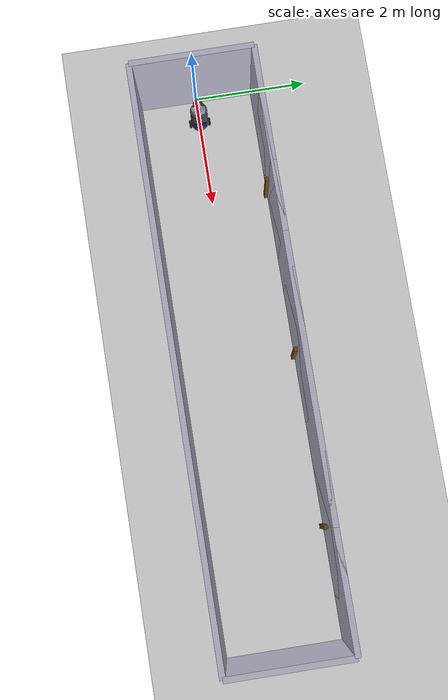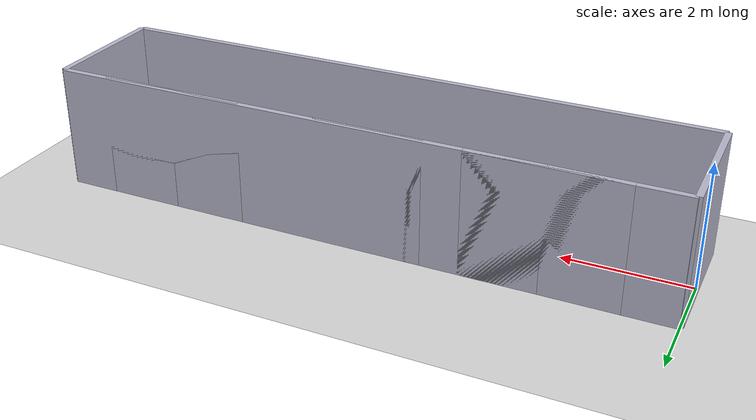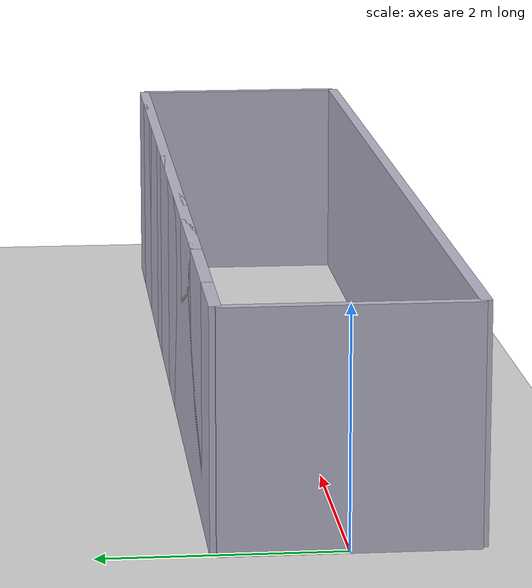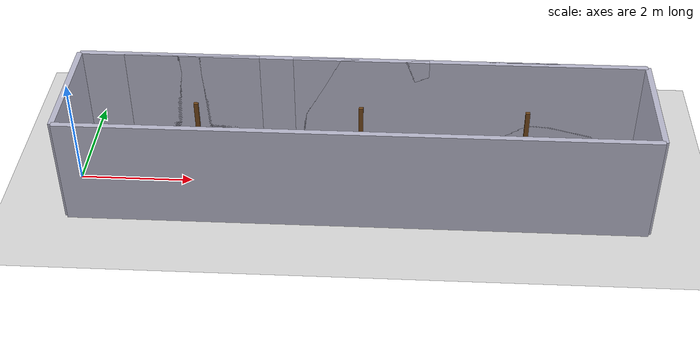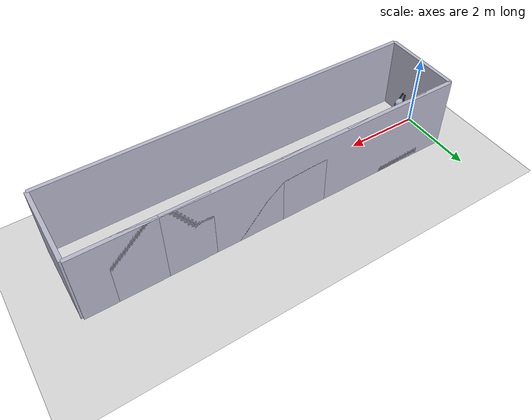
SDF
<?xml version="1.0"?>
<!--
  Gazebo Harmonic (gz-sim 8.x) world for Chapter 2 demo.
  Contains: hallway 10m × 2m with 3 doors + Pluto robot (SDF model inline).
-->
<sdf version="1.9">
  <world name="pluto_hallway">

    <!-- ==================== Plugins ==================== -->
    <plugin filename="gz-sim-physics-system"      name="gz::sim::systems::Physics"/>
    <plugin filename="gz-sim-user-commands-system" name="gz::sim::systems::UserCommands"/>
    <plugin filename="gz-sim-scene-broadcaster-system" name="gz::sim::systems::SceneBroadcaster"/>
    <plugin filename="gz-sim-sensors-system"       name="gz::sim::systems::Sensors">
      <render_engine>ogre2</render_engine>
    </plugin>
    <plugin filename="gz-sim-contact-system"       name="gz::sim::systems::Contact"/>

    <!-- ==================== Environment ==================== -->
    <gravity>0 0 -9.81</gravity>

    <light type="directional" name="sun">
      <cast_shadows>true</cast_shadows>
      <pose>0 0 10 0 0 0</pose>
      <diffuse>0.9 0.9 0.9 1</diffuse>
      <specular>0.3 0.3 0.3 1</specular>
      <direction>-0.4 0.1 -0.9</direction>
    </light>

    <!-- Ground -->
    <model name="ground_plane">
      <static>true</static>
      <link name="link">
        <collision name="collision">
          <geometry><plane><normal>0 0 1</normal><size>25 10</size></plane></geometry>
          <surface><friction><ode><mu>1</mu><mu2>1</mu2></ode></friction></surface>
        </collision>
        <visual name="visual">
          <geometry><plane><normal>0 0 1</normal><size>25 10</size></plane></geometry>
          <material>
            <ambient>0.85 0.85 0.85 1</ambient>
            <diffuse>0.85 0.85 0.85 1</diffuse>
          </material>
        </visual>
      </link>
    </model>

    <!-- ==================== Hallway walls ==================== -->
    <!-- Left wall (y = +1.0) -->
    <model name="left_wall">
      <static>true</static>
      <pose>5 1.05 1.0 0 0 0</pose>
      <link name="link">
        <collision name="c"><geometry><box><size>10 0.1 2.0</size></box></geometry></collision>
        <visual name="v">
          <geometry><box><size>10 0.1 2.0</size></box></geometry>
          <material><ambient>0.72 0.72 0.8 1</ambient><diffuse>0.72 0.72 0.8 1</diffuse></material>
        </visual>
      </link>
    </model>

    <!-- Right wall (y = -1.0) -->
    <model name="right_wall">
      <static>true</static>
      <pose>5 -1.05 1.0 0 0 0</pose>
      <link name="link">
        <collision name="c"><geometry><box><size>10 0.1 2.0</size></box></geometry></collision>
        <visual name="v">
          <geometry><box><size>10 0.1 2.0</size></box></geometry>
          <material><ambient>0.72 0.72 0.8 1</ambient><diffuse>0.72 0.72 0.8 1</diffuse></material>
        </visual>
      </link>
    </model>

    <!-- Start cap -->
    <model name="start_wall">
      <static>true</static>
      <pose>0 0 1.0 0 0 0</pose>
      <link name="link">
        <collision name="c"><geometry><box><size>0.1 2.1 2.0</size></box></geometry></collision>
        <visual name="v">
          <geometry><box><size>0.1 2.1 2.0</size></box></geometry>
          <material><ambient>0.72 0.72 0.8 1</ambient></material>
        </visual>
      </link>
    </model>

    <!-- End cap -->
    <model name="end_wall">
      <static>true</static>
      <pose>10 0 1.0 0 0 0</pose>
      <link name="link">
        <collision name="c"><geometry><box><size>0.1 2.1 2.0</size></box></geometry></collision>
        <visual name="v">
          <geometry><box><size>0.1 2.1 2.0</size></box></geometry>
          <material><ambient>0.72 0.72 0.8 1</ambient></material>
        </visual>
      </link>
    </model>

    <!-- Door markers (openings in left wall at x=2, 5, 8) — brown frames -->
    <model name="door_1_left">  <static>true</static>  <pose>1.4 1.05 1.0 0 0 0</pose>
      <link name="l"><collision name="c"><geometry><box><size>1.2 0.1 2.0</size></box></geometry></collision>
        <visual name="v"><geometry><box><size>1.2 0.1 2.0</size></box></geometry><material><ambient>0.72 0.72 0.8 1</ambient></material></visual></link></model>
    <model name="door_1_right"> <static>true</static>  <pose>2.6 1.05 1.0 0 0 0</pose>
      <link name="l"><collision name="c"><geometry><box><size>1.2 0.1 2.0</size></box></geometry></collision>
        <visual name="v"><geometry><box><size>1.2 0.1 2.0</size></box></geometry><material><ambient>0.72 0.72 0.8 1</ambient></material></visual></link></model>

    <model name="door_2_left">  <static>true</static>  <pose>4.4 1.05 1.0 0 0 0</pose>
      <link name="l"><collision name="c"><geometry><box><size>1.2 0.1 2.0</size></box></geometry></collision>
        <visual name="v"><geometry><box><size>1.2 0.1 2.0</size></box></geometry><material><ambient>0.72 0.72 0.8 1</ambient></material></visual></link></model>
    <model name="door_2_right"> <static>true</static>  <pose>5.6 1.05 1.0 0 0 0</pose>
      <link name="l"><collision name="c"><geometry><box><size>1.2 0.1 2.0</size></box></geometry></collision>
        <visual name="v"><geometry><box><size>1.2 0.1 2.0</size></box></geometry><material><ambient>0.72 0.72 0.8 1</ambient></material></visual></link></model>

    <model name="door_3_left">  <static>true</static>  <pose>7.4 1.05 1.0 0 0 0</pose>
      <link name="l"><collision name="c"><geometry><box><size>1.2 0.1 2.0</size></box></geometry></collision>
        <visual name="v"><geometry><box><size>1.2 0.1 2.0</size></box></geometry><material><ambient>0.72 0.72 0.8 1</ambient></material></visual></link></model>
    <model name="door_3_right"> <static>true</static>  <pose>8.6 1.05 1.0 0 0 0</pose>
      <link name="l"><collision name="c"><geometry><box><size>1.2 0.1 2.0</size></box></geometry></collision>
        <visual name="v"><geometry><box><size>1.2 0.1 2.0</size></box></geometry><material><ambient>0.72 0.72 0.8 1</ambient></material></visual></link></model>

    <!-- Door frames (brown visual markers) -->
    <model name="frame_1"><static>true</static><pose>2.0 1.0 0.5 0 0 0</pose>
      <link name="l"><visual name="v"><geometry><box><size>0.08 0.12 1.0</size></box></geometry>
        <material><ambient>0.45 0.28 0.1 1</ambient><diffuse>0.45 0.28 0.1 1</diffuse></material></visual></link></model>
    <model name="frame_2"><static>true</static><pose>5.0 1.0 0.5 0 0 0</pose>
      <link name="l"><visual name="v"><geometry><box><size>0.08 0.12 1.0</size></box></geometry>
        <material><ambient>0.45 0.28 0.1 1</ambient><diffuse>0.45 0.28 0.1 1</diffuse></material></visual></link></model>
    <model name="frame_3"><static>true</static><pose>8.0 1.0 0.5 0 0 0</pose>
      <link name="l"><visual name="v"><geometry><box><size>0.08 0.12 1.0</size></box></geometry>
        <material><ambient>0.45 0.28 0.1 1</ambient><diffuse>0.45 0.28 0.1 1</diffuse></material></visual></link></model>

    <!-- ==================== Pluto Robot (SDF native) ==================== -->
    <model name="pluto">
      <pose>0.5 0 0.07 0 0 0</pose>

      <!-- Base link -->
      <link name="base_footprint">
        <inertial><mass>0.001</mass><inertia><ixx>0.0000001</ixx><iyy>0.0000001</iyy><izz>0.0000001</izz></inertia></inertial>
      </link>

      <link name="base_link">
        <pose>0 0 0.07 0 0 0</pose>
        <inertial><mass>10.0</mass>
          <inertia><ixx>0.35</ixx><iyy>0.35</iyy><izz>0.12</izz><ixy>0</ixy><ixz>0</ixz><iyz>0</iyz></inertia>
        </inertial>
        <!-- Main cylinder body -->
        <visual name="body">
          <pose>0 0 0.30 0 0 0</pose>
          <geometry><cylinder><radius>0.15</radius><length>0.60</length></cylinder></geometry>
          <material><ambient>0.28 0.30 0.33 1</ambient><diffuse>0.28 0.30 0.33 1</diffuse></material>
        </visual>
        <collision name="body_col">
          <pose>0 0 0.30 0 0 0</pose>
          <geometry><cylinder><radius>0.15</radius><length>0.60</length></cylinder></geometry>
        </collision>
        <!-- Head sphere -->
        <visual name="head">
          <pose>0 0 0.665 0 0 0</pose>
          <geometry><sphere><radius>0.13</radius></sphere></geometry>
          <material><ambient>0.70 0.73 0.78 1</ambient><diffuse>0.70 0.73 0.78 1</diffuse></material>
        </visual>
        <!-- Left horn -->
        <visual name="horn_l">
          <pose>-0.05 0.06 0.82 0 -0.35 0.52</pose>
          <geometry><cylinder><radius>0.022</radius><length>0.25</length></cylinder></geometry>
          <material><ambient>0.2 0.22 0.25 1</ambient></material>
        </visual>
        <!-- Right horn -->
        <visual name="horn_r">
          <pose>-0.05 -0.06 0.82 0 -0.35 -0.52</pose>
          <geometry><cylinder><radius>0.022</radius><length>0.25</length></cylinder></geometry>
          <material><ambient>0.2 0.22 0.25 1</ambient></material>
        </visual>
        <!-- Left eye (blue) -->
        <visual name="eye_l">
          <pose>0.10 0.05 0.67 0 0 0</pose>
          <geometry><sphere><radius>0.024</radius></sphere></geometry>
          <material><ambient>0.0 0.5 1.0 1</ambient><diffuse>0.0 0.5 1.0 1</diffuse><emissive>0.0 0.3 0.8 1</emissive></material>
        </visual>
        <!-- Right eye (blue) -->
        <visual name="eye_r">
          <pose>0.10 -0.05 0.67 0 0 0</pose>
          <geometry><sphere><radius>0.024</radius></sphere></geometry>
          <material><ambient>0.0 0.5 1.0 1</ambient><diffuse>0.0 0.5 1.0 1</diffuse><emissive>0.0 0.3 0.8 1</emissive></material>
        </visual>
        <!-- Chest panel (dark blue) -->
        <visual name="chest">
          <pose>0.155 0 0.30 0 0 0</pose>
          <geometry><box><size>0.01 0.22 0.18</size></box></geometry>
          <material><ambient>0.05 0.15 0.40 1</ambient><diffuse>0.05 0.15 0.40 1</diffuse><emissive>0.0 0.05 0.15 1</emissive></material>
        </visual>

        <!-- LiDAR sensor on left horn tip -->
        <sensor name="lidar" type="gpu_lidar">
          <pose>-0.05 0.06 0.95 0 0 0</pose>
          <topic>scan</topic>
          <update_rate>10</update_rate>
          <visualize>false</visualize>
          <lidar>
            <scan>
              <horizontal>
                <samples>360</samples>
                <resolution>1</resolution>
                <min_angle>-3.14159</min_angle>
                <max_angle>3.14159</max_angle>
              </horizontal>
            </scan>
            <range>
              <min>0.12</min>
              <max>12.0</max>
              <resolution>0.01</resolution>
            </range>
            <noise><type>gaussian</type><mean>0</mean><stddev>0.01</stddev></noise>
          </lidar>
        </sensor>

        <!-- IMU -->
        <sensor name="imu_sensor" type="imu">
          <always_on>true</always_on>
          <update_rate>100</update_rate>
          <topic>imu</topic>
        </sensor>
      </link>

      <!-- Left wheel -->
      <link name="left_wheel">
        <pose>0 0.17 0.07 1.5707963 0 0</pose>
        <inertial><mass>0.8</mass>
          <inertia><ixx>0.002</ixx><iyy>0.002</iyy><izz>0.004</izz></inertia>
        </inertial>
        <visual name="v">
          <geometry><cylinder><radius>0.07</radius><length>0.04</length></cylinder></geometry>
          <material><ambient>0.12 0.12 0.12 1</ambient><diffuse>0.12 0.12 0.12 1</diffuse></material>
        </visual>
        <collision name="c">
          <geometry><cylinder><radius>0.07</radius><length>0.04</length></cylinder></geometry>
          <surface><friction><ode><mu>1.0</mu><mu2>1.0</mu2></ode></friction></surface>
        </collision>
      </link>

      <!-- Right wheel -->
      <link name="right_wheel">
        <pose>0 -0.17 0.07 1.5707963 0 0</pose>
        <inertial><mass>0.8</mass>
          <inertia><ixx>0.002</ixx><iyy>0.002</iyy><izz>0.004</izz></inertia>
        </inertial>
        <visual name="v">
          <geometry><cylinder><radius>0.07</radius><length>0.04</length></cylinder></geometry>
          <material><ambient>0.12 0.12 0.12 1</ambient><diffuse>0.12 0.12 0.12 1</diffuse></material>
        </visual>
        <collision name="c">
          <geometry><cylinder><radius>0.07</radius><length>0.04</length></cylinder></geometry>
          <surface><friction><ode><mu>1.0</mu><mu2>1.0</mu2></ode></friction></surface>
        </collision>
      </link>

      <!-- Caster -->
      <link name="caster">
        <pose>-0.11 0 0.035 0 0 0</pose>
        <inertial><mass>0.2</mass>
          <inertia><ixx>0.0003</ixx><iyy>0.0003</iyy><izz>0.0003</izz></inertia>
        </inertial>
        <visual name="v">
          <geometry><sphere><radius>0.035</radius></sphere></geometry>
          <material><ambient>0.12 0.12 0.12 1</ambient></material>
        </visual>
        <collision name="c">
          <geometry><sphere><radius>0.035</radius></sphere></geometry>
          <surface><friction><ode><mu>0.0</mu><mu2>0.0</mu2></ode></friction></surface>
        </collision>
      </link>

      <!-- Joints -->
      <joint name="base_joint" type="fixed">
        <parent>base_footprint</parent><child>base_link</child>
      </joint>
      <joint name="left_wheel_joint" type="revolute">
        <parent>base_link</parent><child>left_wheel</child>
        <axis><xyz>0 0 -1</xyz><limit><lower>-1e16</lower><upper>1e16</upper></limit></axis>
      </joint>
      <joint name="right_wheel_joint" type="revolute">
        <parent>base_link</parent><child>right_wheel</child>
        <axis><xyz>0 0 -1</xyz><limit><lower>-1e16</lower><upper>1e16</upper></limit></axis>
      </joint>
      <joint name="caster_joint" type="ball">
        <parent>base_link</parent><child>caster</child>
      </joint>

      <!-- ===== Gazebo Harmonic Plugins ===== -->
      <!-- Differential drive -->
      <plugin filename="gz-sim-diff-drive-system" name="gz::sim::systems::DiffDrive">
        <left_joint>left_wheel_joint</left_joint>
        <right_joint>right_wheel_joint</right_joint>
        <wheel_separation>0.34</wheel_separation>
        <wheel_radius>0.07</wheel_radius>
        <odom_publish_frequency>10</odom_publish_frequency>
        <topic>cmd_vel</topic>
        <odom_topic>odom</odom_topic>
        <tf_topic>tf</tf_topic>
        <frame_id>odom</frame_id>
        <child_frame_id>base_footprint</child_frame_id>
      </plugin>

      <!-- Joint state publisher -->
      <plugin filename="gz-sim-joint-state-publisher-system" name="gz::sim::systems::JointStatePublisher">
        <topic>joint_states</topic>
      </plugin>

    </model>

  </world>
</sdf>
